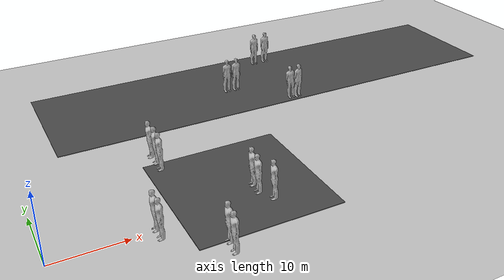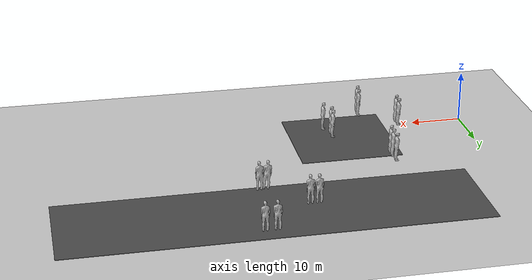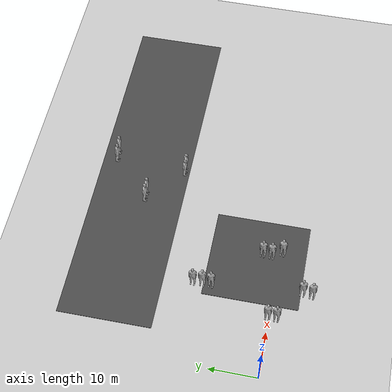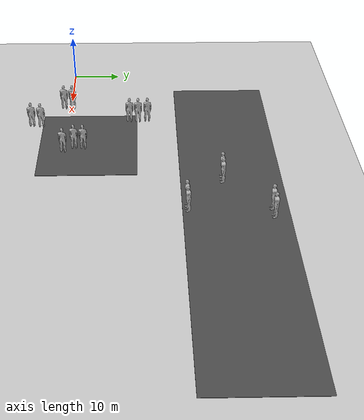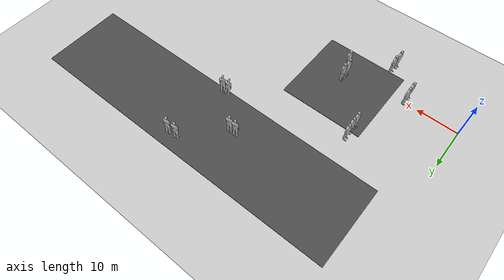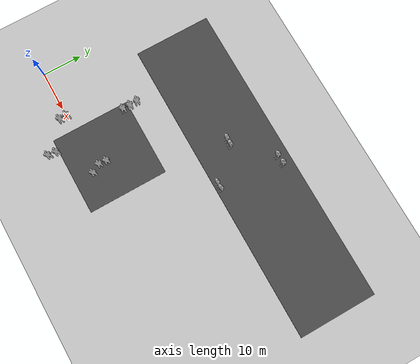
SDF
<sdf version="1.6">
 <world name="default">
  <light name="sun" type="directional">
   <pose>0 0 10 0 -0 0</pose>
   <diffuse>0.8 0.8 0.8 1</diffuse>
   <specular>0.2 0.2 0.2 1</specular>
   <attenuation>
    <range>1000</range>
    <constant>0.9</constant>
    <linear>0.01</linear>
    <quadratic>0.001</quadratic>
   </attenuation>
   <direction>-0.5 0.1 -0.9</direction>
  </light>
  <model name="ground_plane">
   <static>1</static>
   <link name="link">
    <collision name="collision">
     <geometry><plane><normal>0 0 1</normal><size>100 100</size></plane></geometry>
     <surface>
      <contact><collide_bitmask>65535</collide_bitmask></contact>
      <friction><ode><mu>100</mu><mu2>50</mu2></ode></friction>
     </surface>
    </collision>
    <visual name="visual">
     <cast_shadows>0</cast_shadows>
     <geometry><plane><normal>0 0 1</normal><size>100 100</size></plane></geometry>
     <material>
      <script><uri>file://media/materials/scripts/gazebo.material</uri><name>Gazebo/Grey</name></script>
     </material>
    </visual>
   </link>
  </model>
  <model name="asphalt_plane">
   <pose>26.196 4.39554 0 0 -0 0</pose>
   <static>1</static>
   <link name="link">
    <collision name="collision"><geometry><box><size>20 20 0.1</size></box></geometry></collision>
    <visual name="visual">
     <cast_shadows>0</cast_shadows>
     <geometry><box><size>20 20 0.1</size></box></geometry>
     <material>
      <script>
       <uri>model://asphalt_plane/materials/scripts</uri>
       <uri>model://asphalt_plane/materials/textures</uri>
       <name>vrc/asphalt</name>
      </script>
     </material>
    </visual>
   </link>
  </model>
  <physics name="default_physics" default="0" type="ode">
   <ode>
    <solver>
     <type>quick</type>
     <iters>10</iters>
     <sor>1.3</sor>
     <use_dynamic_moi_rescaling>0</use_dynamic_moi_rescaling>
    </solver>
    <constraints>
     <cfm>0</cfm>
     <erp>0.2</erp>
     <contact_max_correcting_vel>100</contact_max_correcting_vel>
     <contact_surface_layer>0.001</contact_surface_layer>
    </constraints>
   </ode>
   <max_step_size>0.004</max_step_size>
   <real_time_factor>1</real_time_factor>
   <real_time_update_rate>250</real_time_update_rate>
  </physics>
  <gravity>0 0 -9.8066</gravity>
  <magnetic_field>6e-06 2.3e-05 -4.2e-05</magnetic_field>
  <atmosphere type="adiabatic"/>
  <scene><ambient>0.4 0.4 0.4 1</ambient><background>0.7 0.7 0.7 1</background><shadows>1</shadows></scene>
  <spherical_coordinates>
   <surface_model>EARTH_WGS84</surface_model>
   <latitude_deg>0</latitude_deg>
   <longitude_deg>0</longitude_deg>
   <elevation>0</elevation>
   <heading_deg>0</heading_deg>
  </spherical_coordinates>
  <model name="asphalt_plane_clone">
   <static>1</static>
   <link name="link">
    <collision name="collision"><geometry><box><size>78.5608 19.6665 0.1</size></box></geometry></collision>
    <visual name="visual">
     <cast_shadows>0</cast_shadows>
     <geometry><box><size>78.5608 19.6665 0.1</size></box></geometry>
     <material>
      <script>
       <uri>model://asphalt_plane/materials/scripts</uri>
       <uri>model://asphalt_plane/materials/textures</uri>
       <name>vrc/asphalt</name>
      </script>
     </material>
    </visual>
   </link>
   <pose>45.7176 32.5781 0 0 -0 0</pose>
  </model>
  <model name="person_standing_clone_2">
   <link name="link">
    <inertial>
     <pose>0 -0.1 0.95 0 -0 0</pose>
     <mass>80</mass>
     <inertia><ixx>24.88</ixx><ixy>0</ixy><ixz>0</ixz><iyy>25.73</iyy><iyz>0</iyz><izz>2.48</izz></inertia>
    </inertial>
    <collision name="bottom">
     <pose>0 -0.1 0.01 0 -0 0</pose>
     <geometry><box><size>0.5 0.35 0.02</size></box></geometry>
    </collision>
    <collision name="person">
     <pose>0 0 0.02 0.04 -0 0</pose>
     <geometry><mesh><uri>model://person_standing/meshes/standing.dae</uri><scale>3 3 3</scale></mesh></geometry>
    </collision>
    <visual name="visual">
     <pose>0 0 0.02 0.04 -0 0</pose>
     <geometry><mesh><uri>model://person_standing/meshes/standing.dae</uri><scale>3 3 3</scale></mesh></geometry>
    </visual>
   </link>
   <pose>13.3325 0.290136 0.069964 0 2.1e-05 -1.64506</pose>
  </model>
  <model name="person_standing_clone_2_clone">
   <link name="link">
    <inertial>
     <pose>0 -0.1 0.95 0 -0 0</pose>
     <mass>80</mass>
     <inertia><ixx>24.88</ixx><ixy>0</ixy><ixz>0</ixz><iyy>25.73</iyy><iyz>0</iyz><izz>2.48</izz></inertia>
    </inertial>
    <collision name="bottom">
     <pose>0 -0.1 0.01 0 -0 0</pose>
     <geometry><box><size>1.5 1.05 0.06</size></box></geometry>
    </collision>
    <collision name="person">
     <pose>0 0 0.02 0.04 -0 0</pose>
     <geometry><mesh><uri>model://person_standing/meshes/standing.dae</uri><scale>3 3 3</scale></mesh></geometry>
    </collision>
    <visual name="visual">
     <pose>0 0 0.02 0.04 -0 0</pose>
     <geometry><mesh><uri>model://person_standing/meshes/standing.dae</uri><scale>3 3 3</scale></mesh></geometry>
    </visual>
   </link>
   <pose>13.34 -1.52359 0.069964 0 2.1e-05 -1.645</pose>
  </model>
  <model name="person_standing_clone_2_clone_0">
   <link name="link">
    <inertial>
     <pose>0 -0.1 0.95 0 -0 0</pose>
     <mass>80</mass>
     <inertia><ixx>24.88</ixx><ixy>0</ixy><ixz>0</ixz><iyy>25.73</iyy><iyz>0</iyz><izz>2.48</izz></inertia>
    </inertial>
    <collision name="bottom">
     <pose>0 -0.1 0.01 0 -0 0</pose>
     <geometry><box><size>1.5 1.05 0.06</size></box></geometry>
    </collision>
    <collision name="person">
     <pose>0 0 0.02 0.04 -0 0</pose>
     <geometry><mesh><uri>model://person_standing/meshes/standing.dae</uri><scale>3 3 3</scale></mesh></geometry>
    </collision>
    <visual name="visual">
     <pose>0 0 0.02 0.04 -0 0</pose>
     <geometry><mesh><uri>model://person_standing/meshes/standing.dae</uri><scale>3 3 3</scale></mesh></geometry>
    </visual>
   </link>
   <pose>18.5435 14.6143 0.069964 0 2.1e-05 -1.64523</pose>
  </model>
  <model name="person_standing_clone_2_clone_1">
   <link name="link">
    <inertial>
     <pose>0 -0.1 0.95 0 -0 0</pose>
     <mass>80</mass>
     <inertia><ixx>24.88</ixx><ixy>0</ixy><ixz>0</ixz><iyy>25.73</iyy><iyz>0</iyz><izz>2.48</izz></inertia>
    </inertial>
    <collision name="bottom">
     <pose>0 -0.1 0.01 0 -0 0</pose>
     <geometry><box><size>1.5 1.05 0.06</size></box></geometry>
    </collision>
    <collision name="person">
     <pose>0 0 0.02 0.04 -0 0</pose>
     <geometry><mesh><uri>model://person_standing/meshes/standing.dae</uri><scale>3 3 3</scale></mesh></geometry>
    </collision>
    <visual name="visual">
     <pose>0 0 0.02 0.04 -0 0</pose>
     <geometry><mesh><uri>model://person_standing/meshes/standing.dae</uri><scale>3 3 3</scale></mesh></geometry>
    </visual>
   </link>
   <pose>20.1425 -5.88119 0.06996 2e-06 -2.9e-05 -1.64554</pose>
  </model>
  <model name="person_standing_clone_2_clone_2">
   <link name="link">
    <inertial>
     <pose>0 -0.1 0.95 0 -0 0</pose>
     <mass>80</mass>
     <inertia><ixx>24.88</ixx><ixy>0</ixy><ixz>0</ixz><iyy>25.73</iyy><iyz>0</iyz><izz>2.48</izz></inertia>
    </inertial>
    <collision name="bottom">
     <pose>0 -0.1 0.01 0 -0 0</pose>
     <geometry><box><size>1.5 1.05 0.06</size></box></geometry>
    </collision>
    <collision name="person">
     <pose>0 0 0.02 0.04 -0 0</pose>
     <geometry><mesh><uri>model://person_standing/meshes/standing.dae</uri><scale>3 3 3</scale></mesh></geometry>
    </collision>
    <visual name="visual">
     <pose>0 0 0.02 0.04 -0 0</pose>
     <geometry><mesh><uri>model://person_standing/meshes/standing.dae</uri><scale>3 3 3</scale></mesh></geometry>
    </visual>
   </link>
   <pose>19.9044 -7.87831 0.070001 2e-06 2e-05 -1.64588</pose>
  </model>
  <model name="person_standing_clone_2_clone_3">
   <link name="link">
    <inertial>
     <pose>0 -0.1 0.95 0 -0 0</pose>
     <mass>80</mass>
     <inertia><ixx>24.88</ixx><ixy>0</ixy><ixz>0</ixz><iyy>25.73</iyy><iyz>0</iyz><izz>2.48</izz></inertia>
    </inertial>
    <collision name="bottom">
     <pose>0 -0.1 0.01 0 -0 0</pose>
     <geometry><box><size>1.5 1.05 0.06</size></box></geometry>
    </collision>
    <collision name="person">
     <pose>0 0 0.02 0.04 -0 0</pose>
     <geometry><mesh><uri>model://person_standing/meshes/standing.dae</uri><scale>3 3 3</scale></mesh></geometry>
    </collision>
    <visual name="visual">
     <pose>0 0 0.02 0.04 -0 0</pose>
     <geometry><mesh><uri>model://person_standing/meshes/standing.dae</uri><scale>3 3 3</scale></mesh></geometry>
    </visual>
   </link>
   <pose>27.8756 3.45308 0.070001 2e-06 1.9e-05 -1.68894</pose>
  </model>
  <model name="person_standing_clone_2_clone_4">
   <link name="link">
    <inertial>
     <pose>0 -0.1 0.95 0 -0 0</pose>
     <mass>80</mass>
     <inertia><ixx>24.88</ixx><ixy>0</ixy><ixz>0</ixz><iyy>25.73</iyy><iyz>0</iyz><izz>2.48</izz></inertia>
    </inertial>
    <collision name="bottom">
     <pose>0 -0.1 0.01 0 -0 0</pose>
     <geometry><box><size>1.5 1.05 0.06</size></box></geometry>
    </collision>
    <collision name="person">
     <pose>0 0 0.02 0.04 -0 0</pose>
     <geometry><mesh><uri>model://person_standing/meshes/standing.dae</uri><scale>3 3 3</scale></mesh></geometry>
    </collision>
    <visual name="visual">
     <pose>0 0 0.02 0.04 -0 0</pose>
     <geometry><mesh><uri>model://person_standing/meshes/standing.dae</uri><scale>3 3 3</scale></mesh></geometry>
    </visual>
   </link>
   <pose>28.9125 -0.608212 0.069964 0 2.4e-05 -1.76299</pose>
  </model>
  <model name="person_standing_clone_2_clone_0_clone">
   <link name="link">
    <inertial>
     <pose>0 -0.1 0.95 0 -0 0</pose>
     <mass>80</mass>
     <inertia><ixx>24.88</ixx><ixy>0</ixy><ixz>0</ixz><iyy>25.73</iyy><iyz>0</iyz><izz>2.48</izz></inertia>
    </inertial>
    <collision name="bottom">
     <pose>0 -0.1 0.01 0 -0 0</pose>
     <geometry><box><size>1.5 1.05 0.06</size></box></geometry>
    </collision>
    <collision name="person">
     <pose>0 0 0.02 0.04 -0 0</pose>
     <geometry><mesh><uri>model://person_standing/meshes/standing.dae</uri><scale>3 3 3</scale></mesh></geometry>
    </collision>
    <visual name="visual">
     <pose>0 0 0.02 0.04 -0 0</pose>
     <geometry><mesh><uri>model://person_standing/meshes/standing.dae</uri><scale>3 3 3</scale></mesh></geometry>
    </visual>
   </link>
   <pose>18.411 16.579 0.070001 2e-06 2e-05 -1.64524</pose>
  </model>
  <model name="person_standing_clone_2_clone_0_clone_0">
   <link name="link">
    <inertial>
     <pose>0 -0.1 0.95 0 -0 0</pose>
     <mass>80</mass>
     <inertia><ixx>24.88</ixx><ixy>0</ixy><ixz>0</ixz><iyy>25.73</iyy><iyz>0</iyz><izz>2.48</izz></inertia>
    </inertial>
    <collision name="bottom">
     <pose>0 -0.1 0.01 0 -0 0</pose>
     <geometry><box><size>1.5 1.05 0.06</size></box></geometry>
    </collision>
    <collision name="person">
     <pose>0 0 0.02 0.04 -0 0</pose>
     <geometry><mesh><uri>model://person_standing/meshes/standing.dae</uri><scale>3 3 3</scale></mesh></geometry>
    </collision>
    <visual name="visual">
     <pose>0 0 0.02 0.04 -0 0</pose>
     <geometry><mesh><uri>model://person_standing/meshes/standing.dae</uri><scale>3 3 3</scale></mesh></geometry>
    </visual>
   </link>
   <pose>18.4724 12.7871 0.069964 -0 2.1e-05 -1.64556</pose>
  </model>
  <model name="person_standing_clone_2_clone_0_clone_1">
   <link name="link">
    <inertial>
     <pose>0 -0.1 0.95 0 -0 0</pose>
     <mass>80</mass>
     <inertia><ixx>24.88</ixx><ixy>0</ixy><ixz>0</ixz><iyy>25.73</iyy><iyz>0</iyz><izz>2.48</izz></inertia>
    </inertial>
    <collision name="bottom">
     <pose>0 -0.1 0.01 0 -0 0</pose>
     <geometry><box><size>1.5 1.05 0.06</size></box></geometry>
    </collision>
    <collision name="person">
     <pose>0 0 0.02 0.04 -0 0</pose>
     <geometry><mesh><uri>model://person_standing/meshes/standing.dae</uri><scale>3 3 3</scale></mesh></geometry>
    </collision>
    <visual name="visual">
     <pose>0 0 0.02 0.04 -0 0</pose>
     <geometry><mesh><uri>model://person_standing/meshes/standing.dae</uri><scale>3 3 3</scale></mesh></geometry>
    </visual>
   </link>
   <pose>27.7382 1.57719 0.069964 0 2.1e-05 -1.64589</pose>
  </model>
  <model name="person_standing_clone_2_clone_0_clone_0_clone">
   <link name="link">
    <inertial>
     <pose>0 -0.1 0.95 0 -0 0</pose>
     <mass>80</mass>
     <inertia><ixx>24.88</ixx><ixy>0</ixy><ixz>0</ixz><iyy>25.73</iyy><iyz>0</iyz><izz>2.48</izz></inertia>
    </inertial>
    <collision name="bottom">
     <pose>0 -0.1 0.01 0 -0 0</pose>
     <geometry><box><size>1.5 1.05 0.06</size></box></geometry>
    </collision>
    <collision name="person">
     <pose>0 0 0.02 0.04 -0 0</pose>
     <geometry><mesh><uri>model://person_standing/meshes/standing.dae</uri><scale>3 3 3</scale></mesh></geometry>
    </collision>
    <visual name="visual">
     <pose>0 0 0.02 0.04 -0 0</pose>
     <geometry><mesh><uri>model://person_standing/meshes/standing.dae</uri><scale>3 3 3</scale></mesh></geometry>
    </visual>
   </link>
   <pose>45.2406 23.9124 0.132084 -1e-05 -0.082972 0.03121</pose>
  </model>
  <model name="person_standing_clone_2_clone_0_clone_0_clone_clone">
   <link name="link">
    <inertial>
     <pose>0 -0.1 0.95 0 -0 0</pose>
     <mass>80</mass>
     <inertia><ixx>24.88</ixx><ixy>0</ixy><ixz>0</ixz><iyy>25.73</iyy><iyz>0</iyz><izz>2.48</izz></inertia>
    </inertial>
    <collision name="bottom">
     <pose>0 -0.1 0.01 0 -0 0</pose>
     <geometry><box><size>1.5 1.05 0.06</size></box></geometry>
    </collision>
    <collision name="person">
     <pose>0 0 0.02 0.04 -0 0</pose>
     <geometry><mesh><uri>model://person_standing/meshes/standing.dae</uri><scale>3 3 3</scale></mesh></geometry>
    </collision>
    <visual name="visual">
     <pose>0 0 0.02 0.04 -0 0</pose>
     <geometry><mesh><uri>model://person_standing/meshes/standing.dae</uri><scale>3 3 3</scale></mesh></geometry>
    </visual>
   </link>
   <pose>46.4262 23.9479 0.069969 5e-06 -1.6e-05 0.209631</pose>
  </model>
  <model name="person_standing_clone_2_clone_0_clone_0_clone_clone_0">
   <link name="link">
    <inertial>
     <pose>0 -0.1 0.95 0 -0 0</pose>
     <mass>80</mass>
     <inertia><ixx>24.88</ixx><ixy>0</ixy><ixz>0</ixz><iyy>25.73</iyy><iyz>0</iyz><izz>2.48</izz></inertia>
    </inertial>
    <collision name="bottom">
     <pose>0 -0.1 0.01 0 -0 0</pose>
     <geometry><box><size>1.5 1.05 0.06</size></box></geometry>
    </collision>
    <collision name="person">
     <pose>0 0 0.02 0.04 -0 0</pose>
     <geometry><mesh><uri>model://person_standing/meshes/standing.dae</uri><scale>3 3 3</scale></mesh></geometry>
    </collision>
    <visual name="visual">
     <pose>0 0 0.02 0.04 -0 0</pose>
     <geometry><mesh><uri>model://person_standing/meshes/standing.dae</uri><scale>3 3 3</scale></mesh></geometry>
    </visual>
   </link>
   <pose>38.4289 31.0903 0.069973 -1.5e-05 -1e-06 0.07119</pose>
  </model>
  <model name="person_standing_clone_2_clone_0_clone_0_clone_clone_1">
   <link name="link">
    <inertial>
     <pose>0 -0.1 0.95 0 -0 0</pose>
     <mass>80</mass>
     <inertia><ixx>24.88</ixx><ixy>0</ixy><ixz>0</ixz><iyy>25.73</iyy><iyz>0</iyz><izz>2.48</izz></inertia>
    </inertial>
    <collision name="bottom">
     <pose>0 -0.1 0.01 0 -0 0</pose>
     <geometry><box><size>1.5 1.05 0.06</size></box></geometry>
    </collision>
    <collision name="person">
     <pose>0 0 0.02 0.04 -0 0</pose>
     <geometry><mesh><uri>model://person_standing/meshes/standing.dae</uri><scale>3 3 3</scale></mesh></geometry>
    </collision>
    <visual name="visual">
     <pose>0 0 0.02 0.04 -0 0</pose>
     <geometry><mesh><uri>model://person_standing/meshes/standing.dae</uri><scale>3 3 3</scale></mesh></geometry>
    </visual>
   </link>
   <pose>36.7658 31.1311 0.069973 -1.5e-05 -1e-06 0.071313</pose>
  </model>
  <model name="person_standing_clone_2_clone_0_clone_0_clone_clone_2">
   <link name="link">
    <inertial>
     <pose>0 -0.1 0.95 0 -0 0</pose>
     <mass>80</mass>
     <inertia><ixx>24.88</ixx><ixy>0</ixy><ixz>0</ixz><iyy>25.73</iyy><iyz>0</iyz><izz>2.48</izz></inertia>
    </inertial>
    <collision name="bottom">
     <pose>0 -0.1 0.01 0 -0 0</pose>
     <geometry><box><size>1.5 1.05 0.06</size></box></geometry>
    </collision>
    <collision name="person">
     <pose>0 0 0.02 0.04 -0 0</pose>
     <geometry><mesh><uri>model://person_standing/meshes/standing.dae</uri><scale>3 3 3</scale></mesh></geometry>
    </collision>
    <visual name="visual">
     <pose>0 0 0.02 0.04 -0 0</pose>
     <geometry><mesh><uri>model://person_standing/meshes/standing.dae</uri><scale>3 3 3</scale></mesh></geometry>
    </visual>
   </link>
   <pose>48.4146 39.6294 0.069971 2.7e-05 -1e-06 0.071476</pose>
  </model>
  <model name="person_standing_clone_2_clone_0_clone_0_clone_clone_3">
   <link name="link">
    <inertial>
     <pose>0 -0.1 0.95 0 -0 0</pose>
     <mass>80</mass>
     <inertia><ixx>24.88</ixx><ixy>0</ixy><ixz>0</ixz><iyy>25.73</iyy><iyz>0</iyz><izz>2.48</izz></inertia>
    </inertial>
    <collision name="bottom">
     <pose>0 -0.1 0.01 0 -0 0</pose>
     <geometry><box><size>1.5 1.05 0.06</size></box></geometry>
    </collision>
    <collision name="person">
     <pose>0 0 0.02 0.04 -0 0</pose>
     <geometry><mesh><uri>model://person_standing/meshes/standing.dae</uri><scale>3 3 3</scale></mesh></geometry>
    </collision>
    <visual name="visual">
     <pose>0 0 0.02 0.04 -0 0</pose>
     <geometry><mesh><uri>model://person_standing/meshes/standing.dae</uri><scale>3 3 3</scale></mesh></geometry>
    </visual>
   </link>
   <pose>46.1763 39.5376 0.069999 -1.8e-05 -2e-06 0.071642</pose>
  </model>
 </world>
</sdf>
